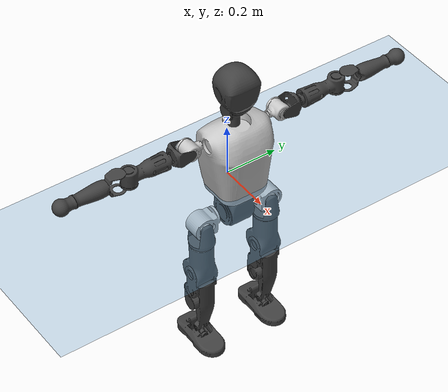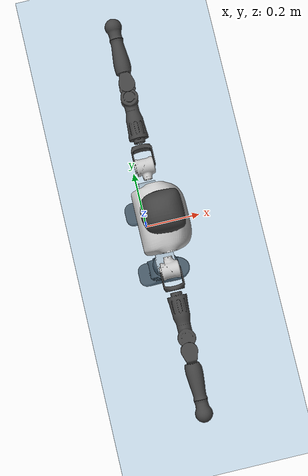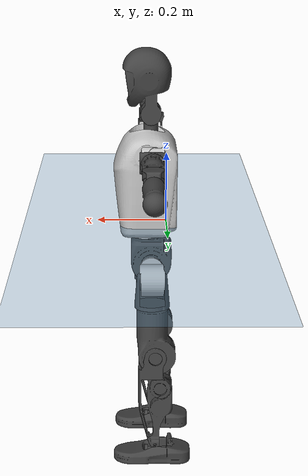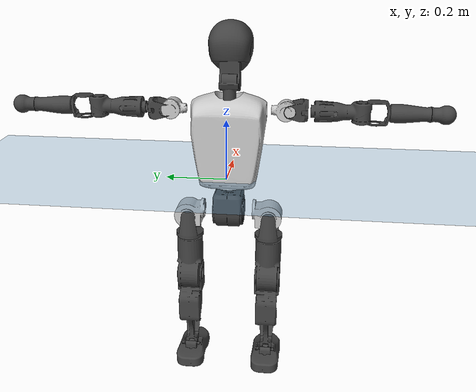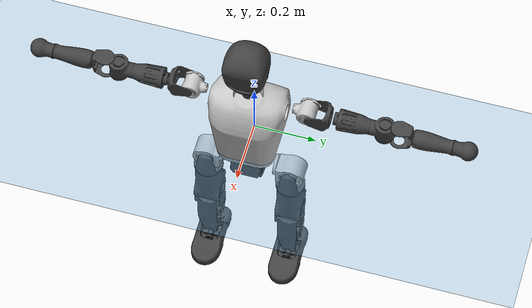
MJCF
<mujoco model="T1">
  <compiler angle="radian" assetdir="assets" balanceinertia="true" inertiafromgeom="false"/>

  <option timestep="0.005" density="1.2" viscosity="2e-05"/>

  <size nkey="1"/>

  <visual>
    <quality shadowsize="8192"/>
    <map shadowclip="0.5"/>
  </visual>

  <default>
    <default class="/">
      <joint armature="0.01" damping="0.01" frictionloss="0.1"/>
      <geom contype="0" conaffinity="0" group="1" solref="-1000 -80"/>
      <site size="0.01 0.005 0.005" group="5"/>
      <general forcelimited="true" biastype="affine" gainprm="25" biasprm="0 -25 -0.6"/>
      <default class="t1">
        <geom rgba="0.25 0.25 0.25 1"/>
        <default class="visual">
          <geom type="mesh" group="2"/>
        </default>
        <default class="collision">
          <geom group="3"/>
        </default>
        <default class="foot">
          <geom size="0.1115 0.05 0.015" type="box" condim="6" group="4" priority="1" solimp="0.015 1 0.015"/>
        </default>
        <default class="reward_collision_sphere">
          <geom group="5" rgba="1 0 0 1"/>
        </default>
      </default>
    </default>
  </default>

  <asset>
    <texture type="skybox" colorspace="auto" name="//unnamed_texture_0" builtin="gradient" rgb1="0.95 0.95 0.95" rgb2="0.95 0.95 0.95" width="100" height="600"/>
    <texture type="2d" colorspace="auto" name="texplane" builtin="checker" rgb1="0.345 0.575 0.748" rgb2="0.345 0.575 0.748" markrgb="1 1 1" width="512" height="512"/>
    <material name="MatPlane" class="/" texture="texplane" texuniform="true" texrepeat="2 2" specular="0.9"/>
    <mesh name="Trunk" class="/" file="Trunk.stl"/>
    <mesh name="H1" class="/" file="H1.stl"/>
    <mesh name="H2" class="/" file="H2.stl"/>
    <mesh name="AL1" class="/" file="AL1.stl"/>
    <mesh name="AL2" class="/" file="AL2.stl"/>
    <mesh name="AL3" class="/" file="AL3.stl"/>
    <mesh name="left_hand_link" class="/" file="left_hand_link.stl"/>
    <mesh name="AR1" class="/" file="AR1.stl"/>
    <mesh name="AR2" class="/" file="AR2.stl"/>
    <mesh name="AR3" class="/" file="AR3.stl"/>
    <mesh name="right_hand_link" class="/" file="right_hand_link.stl"/>
    <mesh name="Waist" class="/" file="Waist.stl"/>
    <mesh name="Hip_Pitch_Left" class="/" file="Hip_Pitch_Left.stl"/>
    <mesh name="Hip_Roll_Left" class="/" file="Hip_Roll_Left.stl"/>
    <mesh name="Hip_Yaw_Left" class="/" file="Hip_Yaw_Left.stl"/>
    <mesh name="Shank_Left" class="/" file="Shank_Left.stl"/>
    <mesh name="Ankle_Cross_Left" class="/" file="Ankle_Cross_Left.stl"/>
    <mesh name="left_foot_link" class="/" file="left_foot_link.stl"/>
    <mesh name="Hip_Pitch_Right" class="/" file="Hip_Pitch_Right.stl"/>
    <mesh name="Hip_Roll_Right" class="/" file="Hip_Roll_Right.stl"/>
    <mesh name="Hip_Yaw_Right" class="/" file="Hip_Yaw_Right.stl"/>
    <mesh name="Shank_Right" class="/" file="Shank_Right.stl"/>
    <mesh name="Ankle_Cross_Right" class="/" file="Ankle_Cross_Right.stl"/>
    <mesh name="right_foot_link" class="/" file="right_foot_link.stl"/>
  </asset>

  <worldbody>
    <geom name="floor" class="/" size="100 100 0.125" type="plane" group="0" material="MatPlane"/>
    <light name="toplight_shadow" class="/" pos="0 0 5" dir="0.0990148 0.0990148 -0.990148" type="directional" ambient="0.04 0.04 0.04" diffuse="0.55 0.55 0.55" specular="0.12 0.12 0.12"/>
    <light name="toplight_fill" class="/" pos="0 0 5" dir="0.0990148 0.0990148 -0.990148" type="directional" castshadow="false" ambient="0.04 0.04 0.04" diffuse="0.3 0.3 0.3" specular="0.08 0.08 0.08"/>
    <body name="trunk" childclass="t1" pos="-2.83732e-05 -0.00146588 -0.00113822" quat="1 5.26497e-07 -4.6337e-07 -1.08983e-06">
      <inertial pos="0.0441152 0.00134573 0.111842" quat="0.999773 0.00377042 -0.0186847 0.00947912" mass="12.6603" diaginertia="0.0232665 0.280022 0.0663645"/>
      <joint name="//unnamed_joint_0" type="free" armature="0" damping="0" frictionloss="0"/>
      <geom name="//unnamed_geom_1" class="visual" rgba="0.76 0.76 0.76 1" mesh="Trunk"/>
      <geom name="//unnamed_geom_2" class="collision" size="0.0778108 0.103748 0.155622" pos="0.0459166 0 0.125152" type="box"/>
      <geom name="//unnamed_geom_3" class="reward_collision_sphere" size="0.11931" pos="0.0459166 0 0.104294"/>
      <geom name="//unnamed_geom_4" class="reward_collision_sphere" size="0.0155622" pos="0.0459166 0.110859 0"/>
      <geom name="//unnamed_geom_5" class="reward_collision_sphere" size="0.0155622" pos="0.0459166 -0.110859 0"/>
      <geom name="//unnamed_geom_6" class="reward_collision_sphere" size="0.0155622" pos="0.0459166 0.139552 0.187728"/>
      <geom name="//unnamed_geom_7" class="reward_collision_sphere" size="0.0155622" pos="0.0459166 -0.139552 0.187728"/>
      <site name="imu" pos="-0.0131111 -0.0111879 0.00174683" size="0.0103748"/>
      <camera name="track" pos="0 -2.60844 0" quat="0.707107 0.707107 0 0" mode="trackcom"/>
      <camera name="ego_camera" pos="0.0933637 0 0.438033" quat="-0.5 -0.5 0.5 0.5"/>
      <body name="H1" pos="0.0454105 -0.00264393 0.255571" quat="1 -9.25545e-06 0.000121091 0.000132316">
        <inertial pos="-0.00118566 -0.000553107 0.0604307" quat="0.759099 -0.0215105 -0.00350376 0.65061" mass="0.482691" diaginertia="6.24995e-05 0.000823963 0.000184086"/>
        <joint name="AAHead_yaw" pos="0 0 0" axis="0.00149949 -0.0081132 0.999966" range="-1.57401 1.52686" armature="0.0109029" damping="0.0254762" frictionloss="0.0982322"/>
        <geom name="//unnamed_geom_8" class="visual" mesh="H1"/>
        <body name="H2" pos="-0.0007263 -0.001578 0.0615871" quat="1 -7.70894e-06 0.000227417 0.000121524">
          <inertial pos="0.00397466 -0.000594604 0.101778" quat="0.989684 0.0999846 -0.0748808 -0.0701472" mass="0.698278" diaginertia="0.000534657 0.00718981 0.00218838"/>
          <joint name="Head_pitch" pos="0 0 0" axis="-0.000642893 -1 0.000600539" stiffness="0.000739721" range="-1.20888 0.349438" armature="0.0101011" damping="0.00968189" frictionloss="0.089165"/>
          <geom name="//unnamed_geom_9" class="visual" mesh="H2"/>
          <geom name="//unnamed_geom_10" class="collision" size="0.0829982" pos="0.00765276 0 0.114723"/>
          <geom name="//unnamed_geom_11" class="reward_collision_sphere" size="0.093373" pos="0.0153055 0 0.104294"/>
        </body>
      </body>
      <body name="AL1" pos="0.0421434 0.138195 0.226303" quat="0.999999 -0.000510439 0.00087502 0.000970246">
        <inertial pos="-0.000552695 0.0562813 -0.00216788" quat="0.501849 0.49408 -0.499709 0.504305" mass="0.597627" diaginertia="0.000366426 0.00503279 0.00035843"/>
        <joint name="Left_Shoulder_Pitch" pos="0 0 0" axis="-0.00109452 0.999999 -0.000502548" stiffness="0.00207864" range="-3.30785 1.27231" armature="0.0101588" damping="0.000787761" frictionloss="0.104496"/>
        <geom name="//unnamed_geom_12" class="visual" rgba="0.76 0.76 0.76 1" mesh="AL1"/>
        <body name="AL2" pos="0.000392798 0.0642694 -0.0028139" quat="0.999999 -0.00101244 0.000449084 -0.000728122">
          <inertial pos="0.00511563 0.0510101 0.00243036" quat="0.48589 0.50879 -0.493131 0.511728" mass="0.181271" diaginertia="0.000103976 0.00128944 0.000221338"/>
          <joint name="Left_Shoulder_Roll" pos="0 0 0" axis="-0.999995 1.79293e-05 -0.00330556" range="-1.57395 1.74288" armature="0.0105111" damping="0.00506435" frictionloss="0.105051"/>
          <geom name="//unnamed_geom_13" class="visual" mesh="AL2"/>
          <body name="AL3" pos="0.000875775 0.0802864 0.00309185" quat="1 6.72135e-05 4.58568e-06 7.71937e-05">
            <inertial pos="-0.00206995 0.110477 -0.00288514" quat="0.704873 0.709197 0.00717332 0.0119268" mass="1.21838" diaginertia="0.00346615 0.0496033 0.000797859"/>
            <joint name="Left_Elbow_Pitch" pos="0 0 0" axis="0.0043916 -0.999945 -0.00957201" stiffness="0.00396337" range="-2.28725 2.31071" armature="0.0108186" damping="0.024003" frictionloss="0.103261"/>
            <geom name="//unnamed_geom_14" class="visual" mesh="AL3"/>
            <geom name="//unnamed_geom_15" class="collision" size="0.0311243 0.0778108" pos="0 0.0652111 0" quat="0.707105 0.707108 0 0" type="cylinder"/>
            <geom name="//unnamed_geom_16" class="reward_collision_sphere" size="0.0373492"/>
            <body name="left_hand_link" pos="0.00235219 0.194238 -0.00146487" quat="1 0.000214967 0.000161281 -0.000262005">
              <inertial pos="-0.000896158 0.144032 -0.00045544" quat="0.709964 0.704236 0.000586054 -0.00168163" mass="0.361951" diaginertia="0.00206888 0.0307428 0.000268191"/>
              <joint name="Left_Elbow_Yaw" pos="0 0 0" axis="0.00075326 0.00107588 0.999999" stiffness="0.00595154" range="-2.48565 0.0142328" armature="0.0103765" damping="0.00533864" frictionloss="0.117928"/>
              <geom name="//unnamed_geom_17" class="visual" mesh="left_hand_link"/>
              <geom name="//unnamed_geom_18" class="collision" size="0.0311243 0.0907793" pos="0 0.169549 0" quat="0.707105 0.707108 0 0" type="cylinder"/>
              <geom name="//unnamed_geom_19" class="reward_collision_sphere" size="0.0518739"/>
              <geom name="//unnamed_geom_20" class="reward_collision_sphere" size="0.0363117" pos="0 0.143464 0"/>
              <geom name="//unnamed_geom_21" class="reward_collision_sphere" size="0.0363117" pos="0 0.280408 0"/>
            </body>
          </body>
        </body>
      </body>
      <body name="AR1" pos="0.0451437 -0.137924 0.227242" quat="0.999999 -0.000558069 0.00156138 -4.02874e-05">
        <inertial pos="-0.00350736 -0.0585423 -0.0021465" quat="0.499683 0.504345 -0.501142 0.494782" mass="0.623953" diaginertia="0.000366211 0.00512685 0.000382097"/>
        <joint name="Right_Shoulder_Pitch" pos="0 0 0" axis="-0.00608673 -0.999981 -0.00119446" stiffness="0.000656416" range="-1.22841 3.30208" armature="0.00994413" damping="0" frictionloss="0.0945387"/>
        <geom name="//unnamed_geom_22" class="visual" rgba="0.76 0.76 0.76 1" mesh="AR1"/>
        <body name="AR2" pos="-0.000993912 -0.0609768 0.00202164" quat="1 0.000224047 -6.94662e-06 -7.70751e-05">
          <inertial pos="0.000207131 -0.0507586 -0.000216056" quat="0.507498 0.486529 -0.508936 0.496709" mass="0.179328" diaginertia="0.000110595 0.00130983 0.000229277"/>
          <joint name="Right_Shoulder_Roll" pos="0 0 0" axis="-0.999998 0.00191009 -0.000858291" stiffness="2.86114e-05" range="-1.74629 1.56589" armature="0.010263" damping="0.00157244" frictionloss="0.105699"/>
          <geom name="//unnamed_geom_23" class="visual" mesh="AR2"/>
          <body name="AR3" pos="0.0012052 -0.0768384 -0.00200484" quat="0.999999 0.000837116 0.00107649 -0.000579924">
            <inertial pos="0.000610873 -0.110292 -1.01712e-05" quat="0.710553 0.703515 0.0133636 -0.00131962" mass="1.17282" diaginertia="0.00349381 0.0489292 0.000779522"/>
            <joint name="Right_Elbow_Pitch" pos="0 0 0" axis="-0.00409922 0.999977 -0.00534811" stiffness="0.00106582" range="-2.25181 2.28545" armature="0.0104434" damping="0.0100569" frictionloss="0.101607"/>
            <geom name="//unnamed_geom_24" class="visual" mesh="AR3"/>
            <geom name="//unnamed_geom_25" class="collision" size="0.0311243 0.0778108" pos="0 -0.0652111 0" quat="0.707105 0.707108 0 0" type="cylinder"/>
            <geom name="//unnamed_geom_26" class="reward_collision_sphere" size="0.0373492"/>
            <body name="right_hand_link" pos="-0.00172106 -0.189463 0.00126052" quat="0.999999 0.000677289 0.00107306 0.000695555">
              <inertial pos="-0.000112014 -0.140061 0.00223522" quat="0.706019 0.708193 -0.000252754 -0.000345065" mass="0.374171" diaginertia="0.00220384 0.0316227 0.000266191"/>
              <joint name="Right_Elbow_Yaw" pos="0 0 0" axis="0.00206132 0.00307 0.999993" range="0.0522229 2.43455" armature="0.0109415" damping="0.00530418" frictionloss="0.113931"/>
              <geom name="//unnamed_geom_27" class="visual" mesh="right_hand_link"/>
              <geom name="//unnamed_geom_28" class="collision" size="0.0311243 0.0907793" pos="0 -0.169549 0" quat="0.707105 0.707108 0 0" type="cylinder"/>
              <geom name="//unnamed_geom_29" class="reward_collision_sphere" size="0.0518739"/>
              <geom name="//unnamed_geom_30" class="reward_collision_sphere" size="0.0363117" pos="0 -0.143464 0"/>
              <geom name="//unnamed_geom_31" class="reward_collision_sphere" size="0.0363117" pos="0 -0.280408 0"/>
            </body>
          </body>
        </body>
      </body>
      <body name="Waist" pos="0.0438064 -0.000874067 -0.120993" quat="1 -0.000552294 0.000619269 -0.000135891">
        <inertial pos="0.000704854 -0.000516382 0.00718034" quat="0.983031 -0.0014852 -0.183327 0.00631873" mass="2.68964" diaginertia="0.00133802 0.019495 0.00575459"/>
        <joint name="Waist" pos="0 0 0" axis="-0.00521046 -0.00490935 0.999974" range="-1.62154 1.58102" armature="0.0117172" damping="0.0221648" frictionloss="0.102209"/>
        <geom name="//unnamed_geom_32" class="visual" mesh="Waist"/>
        <body name="Hip_Pitch_Left" pos="-0.000184121 0.139826 -0.00106007" quat="1 -8.11735e-05 1.82878e-05 8.47056e-05">
          <inertial pos="0.00109557 -0.0069842 -0.016207" quat="0.974668 0.223052 0.00926101 0.0135644" mass="1.17517" diaginertia="0.000476118 0.00573785 0.00156519"/>
          <joint name="Left_Hip_Pitch" pos="0 0 0" axis="0.002308 0.999992 -0.0032433" stiffness="0.00727464" range="-1.79402 1.61213" armature="0.0113184" damping="0.022649" frictionloss="0.110884"/>
          <geom name="//unnamed_geom_33" class="visual" rgba="0.76 0.76 0.76 1" mesh="Hip_Pitch_Left"/>
          <body name="Hip_Roll_Left" pos="0.00167629 -0.00300542 -0.0229587" quat="1 -0.00034618 -0.000268553 -0.000315948">
            <inertial pos="-0.00155572 0.000289354 -0.0537034" quat="0.708174 -0.0124687 -0.0112329 0.705838" mass="0.427495" diaginertia="0.000449728 0.00600285 0.000647569"/>
            <joint name="Left_Hip_Roll" pos="0 0 0" axis="-0.999938 0.00859224 0.00710938" stiffness="0.00949132" range="-1.56967 0.197636" armature="0.0114218" damping="0.00564962" frictionloss="0.090153"/>
            <geom name="//unnamed_geom_34" class="visual" mesh="Hip_Roll_Left"/>
            <geom name="//unnamed_geom_35" class="reward_collision_sphere" size="0.0570613"/>
            <body name="Hip_Yaw_Left" pos="-0.00297331 -0.000198489 -0.0845451" quat="1 0.000128489 0.000214733 -0.000251139">
              <inertial pos="-0.0079007 0.000722034 -0.0927801" quat="0.696721 -0.0385678 -0.03364 0.715515" mass="2.39836" diaginertia="0.00683941 0.0931841 0.00323743"/>
              <joint name="Left_Hip_Yaw" pos="0 0 0" axis="-0.00480365 -0.00323681 -0.999983" range="-1.06164 1.05112" armature="0.0105426" damping="0" frictionloss="0.101226"/>
              <geom name="//unnamed_geom_36" class="visual" mesh="Hip_Yaw_Left"/>
              <geom name="//unnamed_geom_37" class="collision" size="0.0518739 0.0829982" type="cylinder"/>
              <body name="Shank_Left" pos="-0.00920566 -0.000729079 -0.138749" quat="1 0.000190861 -0.000355041 0.000280617">
                <inertial pos="-0.00438385 0.00295153 -0.127366" quat="0.997555 0.00108347 -0.0249623 0.0652705" mass="1.9145" diaginertia="0.00917004 0.132629 0.00231179"/>
                <joint name="Left_Knee_Pitch" pos="0 0 0" axis="0.000216632 1 -0.000590936" stiffness="0.00619478" range="0.0441814 2.29654" armature="0.010374" damping="0.0161976" frictionloss="0.103837"/>
                <geom name="//unnamed_geom_38" class="visual" mesh="Shank_Left"/>
                <geom name="//unnamed_geom_39" class="collision" size="0.0518739 0.0778108" pos="0 0 -0.125152" type="cylinder"/>
                <geom name="//unnamed_geom_40" class="reward_collision_sphere" size="0.067436"/>
                <body name="Ankle_Cross_Left" pos="0.000578462 -0.00116942 -0.289642" quat="1 0.000412091 -7.30826e-05 0.000156596">
                  <inertial pos="-0.0046986 0.00293943 -0.0057856" quat="0.439056 0.562421 0.544272 0.441225" mass="0.0854202" diaginertia="7.96051e-06 9.46724e-05 1.41737e-05"/>
                  <joint name="Left_Ankle_Pitch" pos="0 0 0" axis="-0.00173566 0.999998 -0.00113682" range="-0.827519 0.339749" armature="0.00923795" damping="0.00390703" frictionloss="0.108022"/>
                  <geom name="//unnamed_geom_41" class="visual" mesh="Ankle_Cross_Left"/>
                  <body name="left_foot_link" pos="-0.00162433 -0.00270628 -0.0109059" quat="0.999999 -0.000870918 -0.000348125 0.000400227">
                    <inertial pos="-0.00305534 0.00025958 -0.0121312" quat="-0.00167518 0.619609 0.00377473 0.7849" mass="0.732946" diaginertia="0.000666824 0.00901065 0.00265368"/>
                    <joint name="Left_Ankle_Roll" pos="0 0 0" axis="-0.999996 -0.00121787 0.00273808" stiffness="0.000282203" range="-0.453208 0.438931" armature="0.0102361" damping="0.00547202" frictionloss="0.104834"/>
                    <geom name="//unnamed_geom_42" class="visual" mesh="left_foot_link"/>
                    <geom name="left_foot" class="foot" size="0.110156 0.0474016 0.0146551" pos="0.00765276 0 -0.015644"/>
                    <geom name="//unnamed_geom_44" class="reward_collision_sphere" size="0.0539488" pos="0.00765276 0 -0.015644"/>
                    <geom name="//unnamed_geom_45" class="reward_collision_sphere" size="0.0311243" pos="0.0727012 -0.0299971 -0.015644"/>
                    <geom name="//unnamed_geom_46" class="reward_collision_sphere" size="0.0311243" pos="-0.0535693 -0.0299971 -0.015644"/>
                    <site name="left_foot" class="foot" pos="0.00765276 0 -0.015644" size="0.0103748"/>
                  </body>
                </body>
              </body>
            </body>
          </body>
        </body>
        <body name="Hip_Pitch_Right" pos="6.83591e-05 -0.137554 0.00178577" quat="1 0.000370477 0.00020596 0.000886177">
          <inertial pos="-0.00243706 0.00884116 -0.0162112" quat="0.973494 -0.228184 0.0154897 -0.00086431" mass="1.18355" diaginertia="0.000491042 0.00568314 0.00157402"/>
          <joint name="Right_Hip_Pitch" pos="0 0 0" axis="-0.00148511 -0.999998 0.000918222" range="-1.57044 1.7696" armature="0.00892221" damping="0.00990838" frictionloss="0.104609"/>
          <geom name="//unnamed_geom_47" class="visual" rgba="0.76 0.76 0.76 1" mesh="Hip_Pitch_Right"/>
          <body name="Hip_Roll_Right" pos="0.0012377 -0.000314562 -0.023295" quat="0.999999 0.000853499 0.00101801 -0.000364359">
            <inertial pos="0.00133841 0.00124327 -0.053119" quat="0.710273 -0.0121685 -0.00247915 0.703817" mass="0.417035" diaginertia="0.000457912 0.00583405 0.000625801"/>
            <joint name="Right_Hip_Roll" pos="0 0 0" axis="-1 0.000876705 -0.000222582" range="-0.177543 1.56509" armature="0.0102776" damping="0.0136962" frictionloss="0.11658"/>
            <geom name="//unnamed_geom_48" class="visual" mesh="Hip_Roll_Right"/>
            <geom name="//unnamed_geom_49" class="reward_collision_sphere" size="0.0570613"/>
            <body name="Hip_Yaw_Right" pos="-0.00155122 -0.000610335 -0.0857308" quat="1 6.9402e-05 8.64704e-05 -0.000599748">
              <inertial pos="-0.00481532 -0.00272893 -0.0950572" quat="0.715874 -0.0331009 -0.0283505 0.696868" mass="2.43098" diaginertia="0.00675048 0.099385 0.00311198"/>
              <joint name="Right_Hip_Yaw" pos="0 0 0" axis="-0.000464769 -0.00623342 -0.99998" range="-1.01915 1.00837" armature="0.0116836" damping="0.00632922" frictionloss="0.103645"/>
              <geom name="//unnamed_geom_50" class="visual" mesh="Hip_Yaw_Right"/>
              <geom name="//unnamed_geom_51" class="collision" size="0.0518739 0.0829982" type="cylinder"/>
              <body name="Shank_Right" pos="-0.0124866 0.000538371 -0.138057" quat="0.999999 -0.00119862 -0.000287484 -0.000484535">
                <inertial pos="-0.0046043 0.000135163 -0.130723" quat="0.99924 -0.00585387 -0.023777 -0.0303282" mass="2.02554" diaginertia="0.00931573 0.129582 0.00247971"/>
                <joint name="Right_Knee_Pitch" pos="0 0 0" axis="-0.0109613 -0.99994 -0.000402897" stiffness="0.00874575" range="-2.29762 0.0227583" armature="0.0112247" damping="0.0190475" frictionloss="0.10531"/>
                <geom name="//unnamed_geom_52" class="visual" mesh="Shank_Right"/>
                <geom name="//unnamed_geom_53" class="collision" size="0.0518739 0.0778108" pos="0 0 -0.125152" type="cylinder"/>
                <geom name="//unnamed_geom_54" class="reward_collision_sphere" size="0.067436"/>
                <body name="Ankle_Cross_Right" pos="-0.002026 2.59217e-05 -0.291487" quat="1 -7.39618e-06 3.33855e-07 2.63689e-06">
                  <inertial pos="-0.00333866 -0.00250237 -0.00843743" quat="0.444176 0.549417 0.555907 0.437969" mass="0.085106" diaginertia="7.86851e-06 0.000100489 1.47238e-05"/>
                  <joint name="Right_Ankle_Pitch" pos="0 0 0" axis="0.00656553 -0.999936 0.00918137" range="-0.401034 0.820293" armature="0.0103925" damping="0.0056643" frictionloss="0.104287"/>
                  <geom name="//unnamed_geom_55" class="visual" mesh="Ankle_Cross_Right"/>
                  <body name="right_foot_link" pos="0.00203514 -0.0011178 -0.0148703" quat="1 0.000130328 -1.63994e-05 -0.000129173">
                    <inertial pos="-0.00168828 -0.00016726 -0.00970134" quat="-0.000870162 0.62175 0.000986593 0.783215" mass="0.760267" diaginertia="0.000702621 0.00864698 0.00265352"/>
                    <joint name="Right_Ankle_Roll" pos="0 0 0" axis="-0.999926 0.0100931 -0.00685641" range="-0.476057 0.437071" armature="0.0097473" damping="0.000416594" frictionloss="0.0992086"/>
                    <geom name="//unnamed_geom_56" class="visual" mesh="right_foot_link"/>
                    <geom name="right_foot" class="foot" size="0.108825 0.0448363 0.014548" pos="0.00765276 0 -0.015644"/>
                    <geom name="//unnamed_geom_58" class="reward_collision_sphere" size="0.0414991"/>
                    <geom name="//unnamed_geom_59" class="reward_collision_sphere" size="0.0311243" pos="0.00765276 0 -0.015644"/>
                    <geom name="//unnamed_geom_60" class="reward_collision_sphere" size="0.0311243" pos="0.0727012 0.0299971 -0.015644"/>
                    <geom name="//unnamed_geom_61" class="reward_collision_sphere" size="0.0311243" pos="-0.0535693 0.0299971 -0.015644"/>
                    <site name="right_foot" class="foot" pos="0.00765276 0 -0.015644" size="0.0103748"/>
                  </body>
                </body>
              </body>
            </body>
          </body>
        </body>
      </body>
    </body>
  </worldbody>

  <contact>
    <pair class="/" geom1="floor" geom2="left_foot" name="//unnamed_contact_0"/>
    <pair class="/" geom1="floor" geom2="right_foot" name="//unnamed_contact_1"/>
  </contact>

  <actuator>
    <general name="AAHead_yaw" class="/" joint="AAHead_yaw" forcerange="-7.44157 7.44157" gainprm="23.946" biasprm="0 -23.946 -0.614469"/>
    <general name="Head_pitch" class="/" joint="Head_pitch" forcerange="-7.28739 7.28739" gainprm="23.946" biasprm="0 -23.946 -0.614469"/>
    <general name="Left_Shoulder_Pitch" class="/" joint="Left_Shoulder_Pitch" forcerange="-16.6399 16.6399" gainprm="23.946" biasprm="0 -23.946 -0.614469"/>
    <general name="Left_Shoulder_Roll" class="/" joint="Left_Shoulder_Roll" forcerange="-17.8456 17.8456" gainprm="23.946" biasprm="0 -23.946 -0.614469"/>
    <general name="Left_Elbow_Pitch" class="/" joint="Left_Elbow_Pitch" forcerange="-18.5015 18.5015" gainprm="23.946" biasprm="0 -23.946 -0.614469"/>
    <general name="Left_Elbow_Yaw" class="/" joint="Left_Elbow_Yaw" forcerange="-18.1097 18.1097" gainprm="23.946" biasprm="0 -23.946 -0.614469"/>
    <general name="Right_Shoulder_Pitch" class="/" joint="Right_Shoulder_Pitch" forcerange="-19.712 19.712" gainprm="23.946" biasprm="0 -23.946 -0.614469"/>
    <general name="Right_Shoulder_Roll" class="/" joint="Right_Shoulder_Roll" forcerange="-16.8793 16.8793" gainprm="23.946" biasprm="0 -23.946 -0.614469"/>
    <general name="Right_Elbow_Pitch" class="/" joint="Right_Elbow_Pitch" forcerange="-20.1108 20.1108" gainprm="23.946" biasprm="0 -23.946 -0.614469"/>
    <general name="Right_Elbow_Yaw" class="/" joint="Right_Elbow_Yaw" forcerange="-19.4291 19.4291" gainprm="23.946" biasprm="0 -23.946 -0.614469"/>
    <general name="Waist" class="/" joint="Waist" forcerange="-33.3 33.3" gainprm="23.946" biasprm="0 -23.946 -0.614469"/>
    <general name="Left_Hip_Pitch" class="/" joint="Left_Hip_Pitch" forcerange="-46.35 46.35" gainprm="23.946" biasprm="0 -23.946 -0.614469"/>
    <general name="Left_Hip_Roll" class="/" joint="Left_Hip_Roll" forcerange="-34.3685 34.3685" gainprm="23.946" biasprm="0 -23.946 -0.614469"/>
    <general name="Left_Hip_Yaw" class="/" joint="Left_Hip_Yaw" forcerange="-28.0321 28.0321" gainprm="23.946" biasprm="0 -23.946 -0.614469"/>
    <general name="Left_Knee_Pitch" class="/" joint="Left_Knee_Pitch" forcerange="-59.6502 59.6502" gainprm="23.946" biasprm="0 -23.946 -0.614469"/>
    <general name="Left_Ankle_Pitch" class="/" joint="Left_Ankle_Pitch" forcerange="-20.337 20.337" gainprm="23.946" biasprm="0 -23.946 -0.614469"/>
    <general name="Left_Ankle_Roll" class="/" joint="Left_Ankle_Roll" forcerange="-16.9956 16.9956" gainprm="23.946" biasprm="0 -23.946 -0.614469"/>
    <general name="Right_Hip_Pitch" class="/" joint="Right_Hip_Pitch" forcerange="-46.8424 46.8424" gainprm="23.946" biasprm="0 -23.946 -0.614469"/>
    <general name="Right_Hip_Roll" class="/" joint="Right_Hip_Roll" forcerange="-31.5256 31.5256" gainprm="23.946" biasprm="0 -23.946 -0.614469"/>
    <general name="Right_Hip_Yaw" class="/" joint="Right_Hip_Yaw" forcerange="-33.2862 33.2862" gainprm="23.946" biasprm="0 -23.946 -0.614469"/>
    <general name="Right_Knee_Pitch" class="/" joint="Right_Knee_Pitch" forcerange="-62.1004 62.1004" gainprm="23.946" biasprm="0 -23.946 -0.614469"/>
    <general name="Right_Ankle_Pitch" class="/" joint="Right_Ankle_Pitch" forcerange="-21.0765 21.0765" gainprm="23.946" biasprm="0 -23.946 -0.614469"/>
    <general name="Right_Ankle_Roll" class="/" joint="Right_Ankle_Roll" forcerange="-14.0004 14.0004" gainprm="23.946" biasprm="0 -23.946 -0.614469"/>
  </actuator>

  <sensor>
    <gyro site="imu" name="imu_angular_velocity"/>
    <velocimeter site="imu" name="imu_linear_velocity"/>
    <framelinvel objtype="site" objname="left_foot" name="left_foot_global_linear_velocity"/>
    <framelinvel objtype="site" objname="right_foot" name="right_foot_global_linear_velocity"/>
  </sensor>

  <keyframe>
    <key name="home" qpos="0 0 0.6385 1 0 0 0 0 0 0 1.4 0 -0.4 0 -1.4 0 0.4 0 -0.4 0 0 0.8 -0.4 0 0.4 0 0 -0.8 0.4 0"/>
  </keyframe>
</mujoco>
